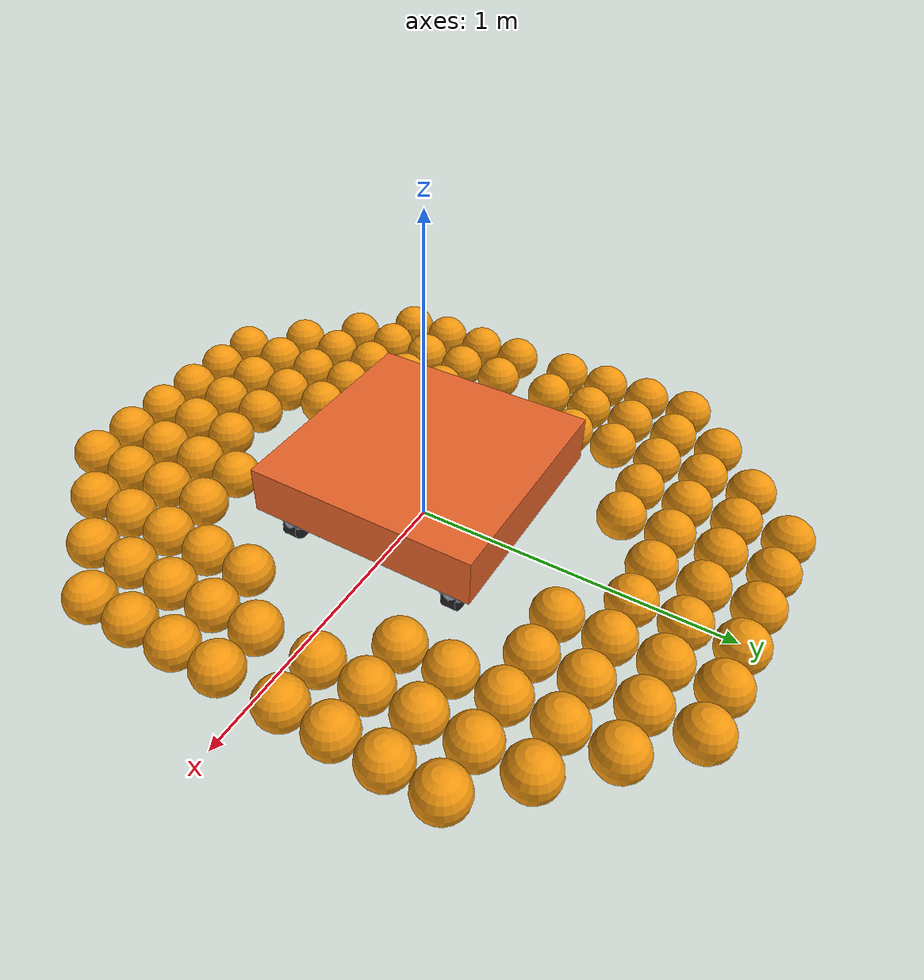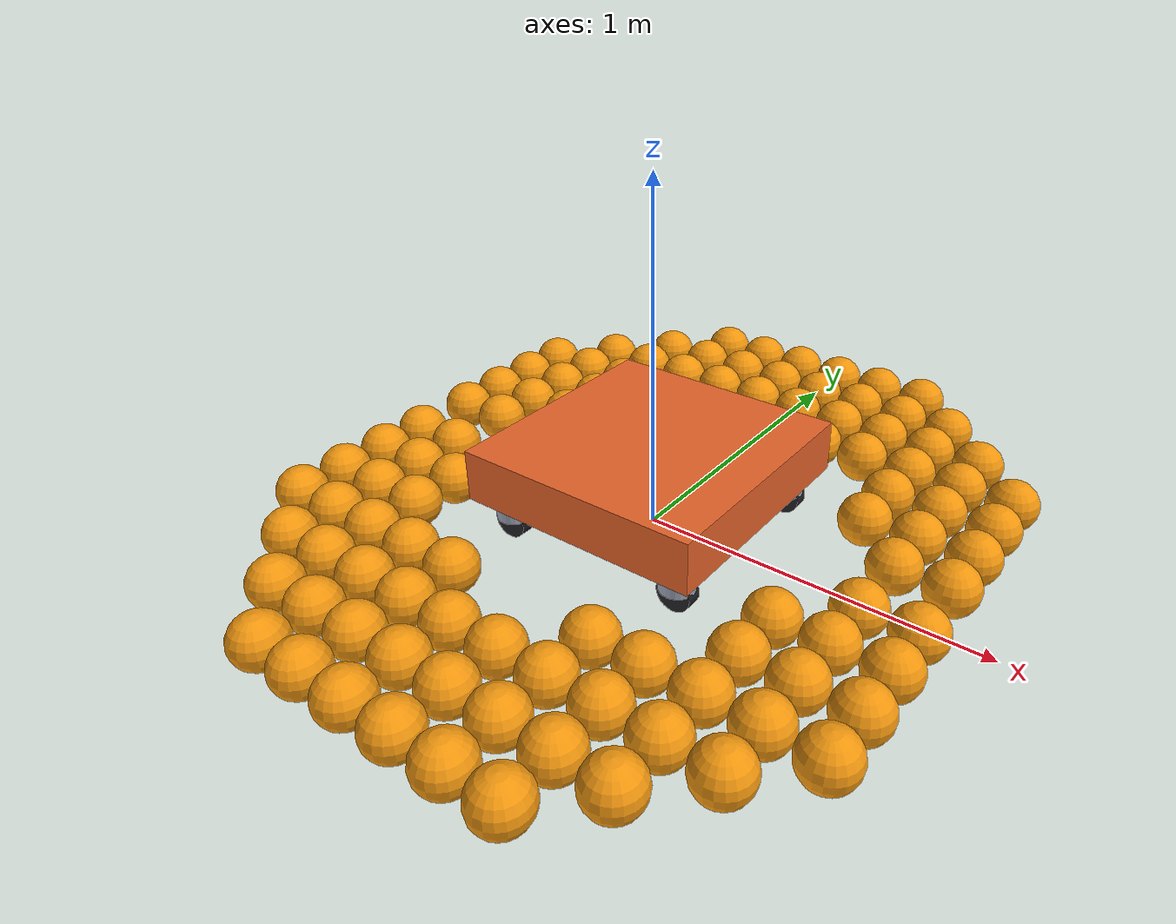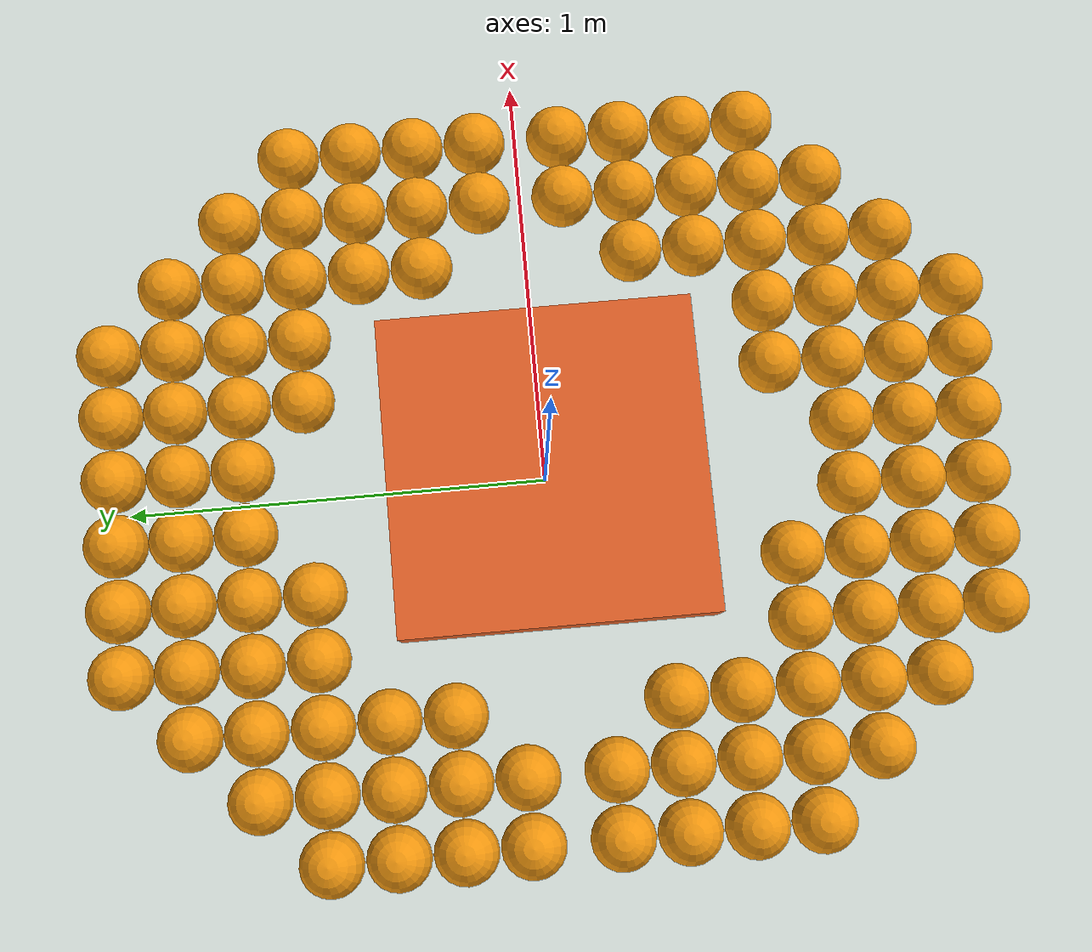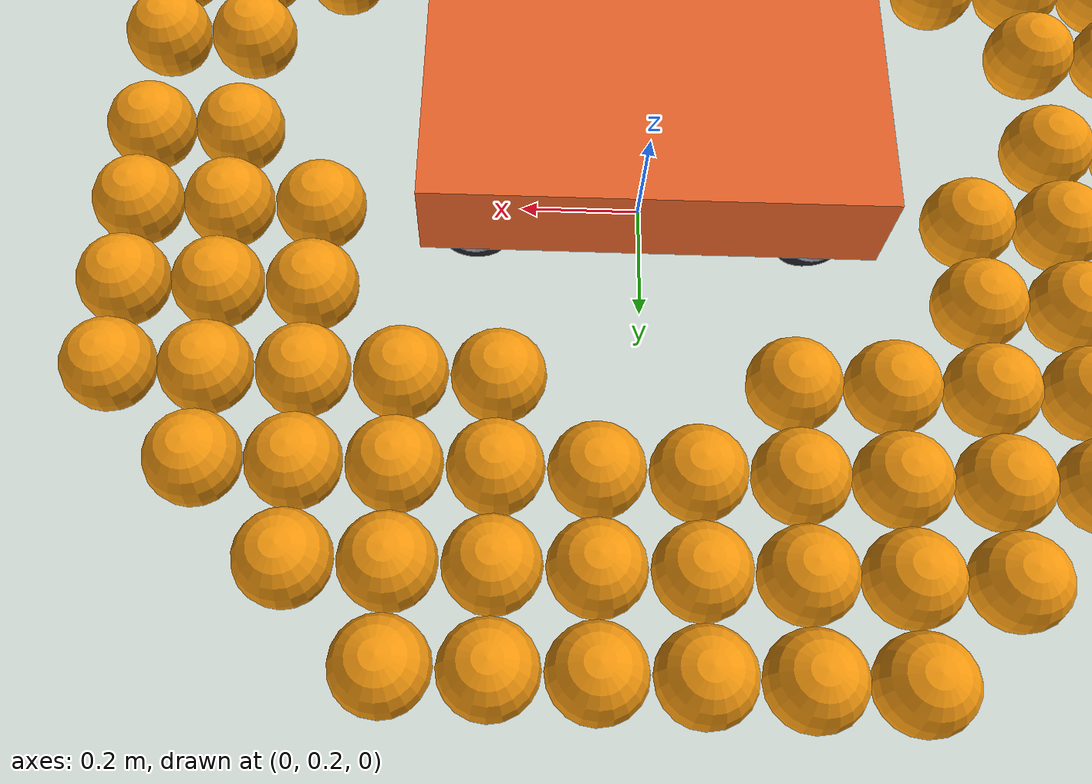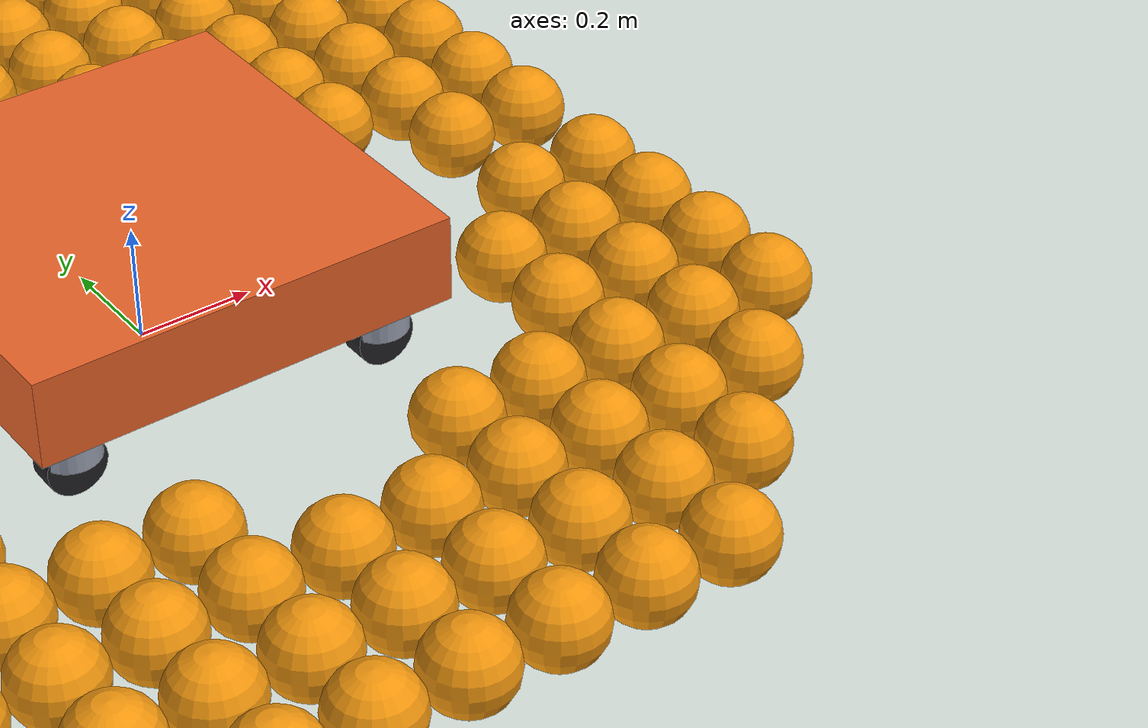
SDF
<sdf version="1.11">
 <world name="mars">
  <physics name="250hz" type="ignored">
   <max_step_size>0.004</max_step_size>
   <real_time_factor>1.0</real_time_factor>
  </physics>
  <plugin filename="gz-sim-physics-system" name="gz::sim::systems::Physics"/>
  <plugin filename="gz-sim-user-commands-system" name="gz::sim::systems::UserCommands"/>
  <plugin filename="gz-sim-scene-broadcaster-system" name="gz::sim::systems::SceneBroadcaster"/>
  <gravity>0 0 -9.8</gravity>
  <light type="directional" name="sun">
   <pose>0 0 10 0 0 0</pose>
   <diffuse>0.8 0.8 0.8 1</diffuse>
   <direction>-0.5 0.1 -0.9</direction>
  </light>
  <model name="ground_plane">
   <static>true</static>
   <link name="link">
    <collision name="collision">
     <geometry><plane><normal>0 0 1</normal></plane></geometry>
     <surface><friction><ode><mu>0.9</mu><mu2>0.9</mu2></ode></friction></surface>
    </collision>
   </link>
  </model>
  <model name="field_collision">
   <static>true</static>
   <link name="link">
    <collision name="guardrail_1">
     <pose>-0.0000 4.1927 0.2611 0.00000 0.00000 0.00000</pose>
     <geometry><box><size>16.6372 0.3580 0.5237</size></box></geometry>
    </collision>
    <collision name="guardrail_2">
     <pose>0.0000 -4.1927 0.2611 0.00000 0.00000 0.00000</pose>
     <geometry><box><size>16.6372 0.3580 0.5237</size></box></geometry>
    </collision>
    <collision name="driver_station_1">
     <pose>-8.4467 3.0798 0.9949 0.00000 0.00000 0.00000</pose>
     <geometry><box><size>0.3810 1.8288 1.9853</size></box></geometry>
    </collision>
    <collision name="driver_station_2">
     <pose>-8.4467 1.2510 0.9949 0.00000 0.00000 0.00000</pose>
     <geometry><box><size>0.3810 1.8288 1.9853</size></box></geometry>
    </collision>
    <collision name="driver_station_3">
     <pose>-8.4467 -1.8288 0.9949 0.00000 0.00000 0.00000</pose>
     <geometry><box><size>0.3810 1.8288 1.9853</size></box></geometry>
    </collision>
    <collision name="driver_station_4">
     <pose>8.4467 1.8288 0.9949 0.00000 0.00000 0.00000</pose>
     <geometry><box><size>0.3810 1.8288 1.9853</size></box></geometry>
    </collision>
    <collision name="driver_station_5">
     <pose>8.4467 -1.2510 0.9949 0.00000 0.00000 0.00000</pose>
     <geometry><box><size>0.3810 1.8288 1.9853</size></box></geometry>
    </collision>
    <collision name="driver_station_6">
     <pose>8.4467 -3.0798 0.9949 0.00000 0.00000 0.00000</pose>
     <geometry><box><size>0.3810 1.8288 1.9853</size></box></geometry>
    </collision>
    <collision name="tower_1">
     <pose>-7.7285 -0.2889 0.9956 0.00000 0.00000 0.00000</pose>
     <geometry><box><size>1.2050 1.2509 1.9911</size></box></geometry>
    </collision>
    <collision name="tower_2">
     <pose>7.7285 0.2889 0.9956 0.00000 0.00000 0.00000</pose>
     <geometry><box><size>1.2050 1.2509 1.9911</size></box></geometry>
    </collision>
    <collision name="outpost_1">
     <pose>-8.7156 -3.4592 0.9955 0.00000 0.00000 0.00000</pose>
     <geometry><box><size>1.0247 1.4319 1.9909</size></box></geometry>
    </collision>
    <collision name="outpost_2">
     <pose>8.7156 3.4592 0.9955 0.00000 0.00000 0.00000</pose>
     <geometry><box><size>1.0247 1.4319 1.9909</size></box></geometry>
    </collision>
    <collision name="hub_1">
     <pose>-3.4933 0.0051 1.5407 0.00000 0.00000 0.00000</pose>
     <geometry><box><size>1.5306 1.4947 3.0814</size></box></geometry>
    </collision>
    <collision name="hub_2">
     <pose>3.4933 -0.0051 1.5407 0.00000 0.00000 0.00000</pose>
     <geometry><box><size>1.5306 1.4947 3.0814</size></box></geometry>
    </collision>
    <collision name="bump_1_1">
     <pose>-3.9155 -1.6345 0.0443 0.00000 -0.28539 0.00000</pose>
     <geometry><box><size>0.5876 2.2333 0.0800</size></box></geometry>
    </collision>
    <collision name="bump_1_2">
     <pose>-3.3743 -1.6345 0.0443 0.00000 0.28539 0.00000</pose>
     <geometry><box><size>0.5876 2.2333 0.0800</size></box></geometry>
    </collision>
    <collision name="bump_2_1">
     <pose>-3.9155 1.6345 0.0443 0.00000 -0.28539 0.00000</pose>
     <geometry><box><size>0.5876 2.2333 0.0800</size></box></geometry>
    </collision>
    <collision name="bump_2_2">
     <pose>-3.3743 1.6345 0.0443 0.00000 0.28539 0.00000</pose>
     <geometry><box><size>0.5876 2.2333 0.0800</size></box></geometry>
    </collision>
    <collision name="bump_3_1">
     <pose>3.3743 -1.6345 0.0443 0.00000 -0.28539 0.00000</pose>
     <geometry><box><size>0.5876 2.2333 0.0800</size></box></geometry>
    </collision>
    <collision name="bump_3_2">
     <pose>3.9155 -1.6345 0.0443 0.00000 0.28539 0.00000</pose>
     <geometry><box><size>0.5876 2.2333 0.0800</size></box></geometry>
    </collision>
    <collision name="bump_4_1">
     <pose>3.3743 1.6345 0.0443 0.00000 -0.28539 0.00000</pose>
     <geometry><box><size>0.5876 2.2333 0.0800</size></box></geometry>
    </collision>
    <collision name="bump_4_2">
     <pose>3.9155 1.6345 0.0443 0.00000 0.28539 0.00000</pose>
     <geometry><box><size>0.5876 2.2333 0.0800</size></box></geometry>
    </collision>
   </link>
  </model>
  <include><uri>model://fuel</uri><name>fuel_001</name><pose>-0.5334 0.2540 0.0765 0 0 0</pose></include>
  <include><uri>model://fuel</uri><name>fuel_002</name><pose>-0.5334 -0.2540 0.0753 0 0 0</pose></include>
  <include><uri>model://fuel</uri><name>fuel_003</name><pose>0.5334 0.2540 0.0765 0 0 0</pose></include>
  <include><uri>model://fuel</uri><name>fuel_004</name><pose>0.5334 -0.2540 0.0753 0 0 0</pose></include>
  <include><uri>model://fuel</uri><name>fuel_005</name><pose>-0.2286 -0.5588 0.0753 0 0 0</pose></include>
  <include><uri>model://fuel</uri><name>fuel_006</name><pose>0.2286 -0.5588 0.0753 0 0 0</pose></include>
  <include><uri>model://fuel</uri><name>fuel_007</name><pose>0.2286 0.5588 0.0765 0 0 0</pose></include>
  <include><uri>model://fuel</uri><name>fuel_008</name><pose>-0.2286 0.5588 0.0765 0 0 0</pose></include>
  <include><uri>model://fuel</uri><name>fuel_009</name><pose>0.5334 0.4064 0.0765 0 0 0</pose></include>
  <include><uri>model://fuel</uri><name>fuel_010</name><pose>-0.5334 0.4064 0.0765 0 0 0</pose></include>
  <include><uri>model://fuel</uri><name>fuel_011</name><pose>-0.5334 -0.4064 0.0753 0 0 0</pose></include>
  <include><uri>model://fuel</uri><name>fuel_012</name><pose>0.5334 -0.4064 0.0753 0 0 0</pose></include>
  <include><uri>model://fuel</uri><name>fuel_013</name><pose>0.3810 -0.5588 0.0753 0 0 0</pose></include>
  <include><uri>model://fuel</uri><name>fuel_014</name><pose>0.3810 0.5588 0.0765 0 0 0</pose></include>
  <include><uri>model://fuel</uri><name>fuel_015</name><pose>-0.3810 -0.5588 0.0753 0 0 0</pose></include>
  <include><uri>model://fuel</uri><name>fuel_016</name><pose>-0.3810 0.5588 0.0765 0 0 0</pose></include>
  <include><uri>model://fuel</uri><name>fuel_017</name><pose>-0.6858 -0.1016 0.0753 0 0 0</pose></include>
  <include><uri>model://fuel</uri><name>fuel_018</name><pose>0.6858 0.1016 0.0765 0 0 0</pose></include>
  <include><uri>model://fuel</uri><name>fuel_019</name><pose>-0.6858 0.1016 0.0765 0 0 0</pose></include>
  <include><uri>model://fuel</uri><name>fuel_020</name><pose>0.6858 -0.1016 0.0753 0 0 0</pose></include>
  <include><uri>model://fuel</uri><name>fuel_021</name><pose>-0.0762 0.7112 0.0765 0 0 0</pose></include>
  <include><uri>model://fuel</uri><name>fuel_022</name><pose>0.0762 -0.7112 0.0753 0 0 0</pose></include>
  <include><uri>model://fuel</uri><name>fuel_023</name><pose>0.0762 0.7112 0.0765 0 0 0</pose></include>
  <include><uri>model://fuel</uri><name>fuel_024</name><pose>-0.0762 -0.7112 0.0753 0 0 0</pose></include>
  <include><uri>model://fuel</uri><name>fuel_025</name><pose>-0.6858 0.2540 0.0765 0 0 0</pose></include>
  <include><uri>model://fuel</uri><name>fuel_026</name><pose>0.6858 -0.2540 0.0753 0 0 0</pose></include>
  <include><uri>model://fuel</uri><name>fuel_027</name><pose>0.6858 0.2540 0.0765 0 0 0</pose></include>
  <include><uri>model://fuel</uri><name>fuel_028</name><pose>-0.6858 -0.2540 0.0753 0 0 0</pose></include>
  <include><uri>model://fuel</uri><name>fuel_029</name><pose>0.2286 0.7112 0.0765 0 0 0</pose></include>
  <include><uri>model://fuel</uri><name>fuel_030</name><pose>0.2286 -0.7112 0.0753 0 0 0</pose></include>
  <include><uri>model://fuel</uri><name>fuel_031</name><pose>-0.2286 -0.7112 0.0753 0 0 0</pose></include>
  <include><uri>model://fuel</uri><name>fuel_032</name><pose>-0.2286 0.7112 0.0765 0 0 0</pose></include>
  <include><uri>model://fuel</uri><name>fuel_033</name><pose>-0.5334 0.5588 0.0765 0 0 0</pose></include>
  <include><uri>model://fuel</uri><name>fuel_034</name><pose>0.5334 -0.5588 0.0753 0 0 0</pose></include>
  <include><uri>model://fuel</uri><name>fuel_035</name><pose>0.5334 0.5588 0.0765 0 0 0</pose></include>
  <include><uri>model://fuel</uri><name>fuel_036</name><pose>-0.5334 -0.5588 0.0753 0 0 0</pose></include>
  <include><uri>model://fuel</uri><name>fuel_037</name><pose>0.6858 0.4064 0.0765 0 0 0</pose></include>
  <include><uri>model://fuel</uri><name>fuel_038</name><pose>-0.6858 0.4064 0.0765 0 0 0</pose></include>
  <include><uri>model://fuel</uri><name>fuel_039</name><pose>0.6858 -0.4064 0.0753 0 0 0</pose></include>
  <include><uri>model://fuel</uri><name>fuel_040</name><pose>-0.6858 -0.4064 0.0753 0 0 0</pose></include>
  <include><uri>model://fuel</uri><name>fuel_041</name><pose>0.3810 0.7112 0.0765 0 0 0</pose></include>
  <include><uri>model://fuel</uri><name>fuel_042</name><pose>-0.3810 -0.7112 0.0753 0 0 0</pose></include>
  <include><uri>model://fuel</uri><name>fuel_043</name><pose>0.3810 -0.7112 0.0753 0 0 0</pose></include>
  <include><uri>model://fuel</uri><name>fuel_044</name><pose>-0.3810 0.7112 0.0765 0 0 0</pose></include>
  <include><uri>model://fuel</uri><name>fuel_045</name><pose>0.8382 -0.1016 0.0753 0 0 0</pose></include>
  <include><uri>model://fuel</uri><name>fuel_046</name><pose>-0.8382 -0.1016 0.0753 0 0 0</pose></include>
  <include><uri>model://fuel</uri><name>fuel_047</name><pose>-0.8382 0.1016 0.0765 0 0 0</pose></include>
  <include><uri>model://fuel</uri><name>fuel_048</name><pose>0.8382 0.1016 0.0765 0 0 0</pose></include>
  <include><uri>model://fuel</uri><name>fuel_049</name><pose>0.0762 0.8636 0.0765 0 0 0</pose></include>
  <include><uri>model://fuel</uri><name>fuel_050</name><pose>-0.0762 -0.8636 0.0753 0 0 0</pose></include>
  <include><uri>model://fuel</uri><name>fuel_051</name><pose>0.0762 -0.8636 0.0753 0 0 0</pose></include>
  <include><uri>model://fuel</uri><name>fuel_052</name><pose>-0.0762 0.8636 0.0765 0 0 0</pose></include>
  <include><uri>model://fuel</uri><name>fuel_053</name><pose>-0.8382 -0.2540 0.0753 0 0 0</pose></include>
  <include><uri>model://fuel</uri><name>fuel_054</name><pose>-0.8382 0.2540 0.0765 0 0 0</pose></include>
  <include><uri>model://fuel</uri><name>fuel_055</name><pose>0.8382 -0.2540 0.0753 0 0 0</pose></include>
  <include><uri>model://fuel</uri><name>fuel_056</name><pose>0.8382 0.2540 0.0765 0 0 0</pose></include>
  <include><uri>model://fuel</uri><name>fuel_057</name><pose>-0.6858 0.5588 0.0765 0 0 0</pose></include>
  <include><uri>model://fuel</uri><name>fuel_058</name><pose>-0.6858 -0.5588 0.0753 0 0 0</pose></include>
  <include><uri>model://fuel</uri><name>fuel_059</name><pose>0.6858 -0.5588 0.0753 0 0 0</pose></include>
  <include><uri>model://fuel</uri><name>fuel_060</name><pose>0.6858 0.5588 0.0765 0 0 0</pose></include>
  <include><uri>model://fuel</uri><name>fuel_061</name><pose>-0.5334 0.7112 0.0765 0 0 0</pose></include>
  <include><uri>model://fuel</uri><name>fuel_062</name><pose>0.5334 -0.7112 0.0753 0 0 0</pose></include>
  <include><uri>model://fuel</uri><name>fuel_063</name><pose>-0.5334 -0.7112 0.0753 0 0 0</pose></include>
  <include><uri>model://fuel</uri><name>fuel_064</name><pose>0.5334 0.7112 0.0765 0 0 0</pose></include>
  <include><uri>model://fuel</uri><name>fuel_065</name><pose>-0.2286 0.8636 0.0765 0 0 0</pose></include>
  <include><uri>model://fuel</uri><name>fuel_066</name><pose>0.2286 0.8636 0.0765 0 0 0</pose></include>
  <include><uri>model://fuel</uri><name>fuel_067</name><pose>-0.2286 -0.8636 0.0753 0 0 0</pose></include>
  <include><uri>model://fuel</uri><name>fuel_068</name><pose>0.2286 -0.8636 0.0753 0 0 0</pose></include>
  <include><uri>model://fuel</uri><name>fuel_069</name><pose>-0.8382 0.4064 0.0765 0 0 0</pose></include>
  <include><uri>model://fuel</uri><name>fuel_070</name><pose>-0.8382 -0.4064 0.0753 0 0 0</pose></include>
  <include><uri>model://fuel</uri><name>fuel_071</name><pose>0.8382 0.4064 0.0765 0 0 0</pose></include>
  <include><uri>model://fuel</uri><name>fuel_072</name><pose>0.8382 -0.4064 0.0753 0 0 0</pose></include>
  <include><uri>model://fuel</uri><name>fuel_073</name><pose>0.3810 -0.8636 0.0753 0 0 0</pose></include>
  <include><uri>model://fuel</uri><name>fuel_074</name><pose>0.3810 0.8636 0.0765 0 0 0</pose></include>
  <include><uri>model://fuel</uri><name>fuel_075</name><pose>-0.3810 -0.8636 0.0753 0 0 0</pose></include>
  <include><uri>model://fuel</uri><name>fuel_076</name><pose>-0.3810 0.8636 0.0765 0 0 0</pose></include>
  <include><uri>model://fuel</uri><name>fuel_077</name><pose>-0.6858 0.7112 0.0765 0 0 0</pose></include>
  <include><uri>model://fuel</uri><name>fuel_078</name><pose>0.6858 0.7112 0.0765 0 0 0</pose></include>
  <include><uri>model://fuel</uri><name>fuel_079</name><pose>0.6858 -0.7112 0.0753 0 0 0</pose></include>
  <include><uri>model://fuel</uri><name>fuel_080</name><pose>-0.6858 -0.7112 0.0753 0 0 0</pose></include>
  <include><uri>model://fuel</uri><name>fuel_081</name><pose>-0.8382 -0.5588 0.0753 0 0 0</pose></include>
  <include><uri>model://fuel</uri><name>fuel_082</name><pose>-0.8382 0.5588 0.0765 0 0 0</pose></include>
  <include><uri>model://fuel</uri><name>fuel_083</name><pose>0.8382 0.5588 0.0765 0 0 0</pose></include>
  <include><uri>model://fuel</uri><name>fuel_084</name><pose>0.8382 -0.5588 0.0753 0 0 0</pose></include>
  <include><uri>model://fuel</uri><name>fuel_085</name><pose>0.5334 -0.8636 0.0753 0 0 0</pose></include>
  <include><uri>model://fuel</uri><name>fuel_086</name><pose>0.5334 0.8636 0.0765 0 0 0</pose></include>
  <include><uri>model://fuel</uri><name>fuel_087</name><pose>-0.5334 -0.8636 0.0753 0 0 0</pose></include>
  <include><uri>model://fuel</uri><name>fuel_088</name><pose>-0.5334 0.8636 0.0765 0 0 0</pose></include>
  <include><uri>model://fuel</uri><name>fuel_089</name><pose>0.0762 -1.0160 0.0753 0 0 0</pose></include>
  <include><uri>model://fuel</uri><name>fuel_090</name><pose>0.0762 1.0160 0.0765 0 0 0</pose></include>
  <include><uri>model://fuel</uri><name>fuel_091</name><pose>-0.0762 -1.0160 0.0753 0 0 0</pose></include>
  <include><uri>model://fuel</uri><name>fuel_092</name><pose>-0.0762 1.0160 0.0765 0 0 0</pose></include>
  <include><uri>model://fuel</uri><name>fuel_093</name><pose>-0.2286 1.0160 0.0765 0 0 0</pose></include>
  <include><uri>model://fuel</uri><name>fuel_094</name><pose>0.2286 1.0160 0.0765 0 0 0</pose></include>
  <include><uri>model://fuel</uri><name>fuel_095</name><pose>-0.2286 -1.0160 0.0753 0 0 0</pose></include>
  <include><uri>model://fuel</uri><name>fuel_096</name><pose>0.2286 -1.0160 0.0753 0 0 0</pose></include>
  <include><uri>model://fuel</uri><name>fuel_097</name><pose>0.3810 -1.0160 0.0753 0 0 0</pose></include>
  <include><uri>model://fuel</uri><name>fuel_098</name><pose>0.3810 1.0160 0.0765 0 0 0</pose></include>
  <include><uri>model://fuel</uri><name>fuel_099</name><pose>-0.3810 1.0160 0.0765 0 0 0</pose></include>
  <include><uri>model://fuel</uri><name>fuel_100</name><pose>-0.3810 -1.0160 0.0753 0 0 0</pose></include>
  <model name="robot">
   <link name="chassis">
    <pose>0 0 0.2 0 0 0</pose>
    <inertial>
     <mass>45.0</mass>
     <inertia><ixx>2.0284</ixx><iyy>2.0284</iyy><izz>3.8880</izz><ixy>0</ixy><ixz>0</ixz><iyz>0</iyz></inertia>
    </inertial>
    <collision name="collision"><geometry><box><size>0.72 0.72 0.15</size></box></geometry></collision>
    <visual name="visual">
     <geometry><box><size>0.72 0.72 0.15</size></box></geometry>
     <material>
      <ambient>0.35 0.15 0.06 1</ambient>
      <diffuse>0.91 0.39 0.16 1</diffuse>
      <specular>0.3 0.3 0.3 1</specular>
     </material>
    </visual>
   </link>
   <link name="fl_steer">
    <pose>0.2757 0.2757 0.12 0 0 0</pose>
    <inertial>
     <mass>1.2</mass>
     <inertia>
      <ixx>0.015346</ixx>
      <iyy>0.015346</iyy>
      <izz>0.030091</izz>
      <ixy>0</ixy>
      <ixz>0</ixz>
      <iyz>0</iyz>
     </inertia>
    </inertial>
    <visual name="visual">
     <geometry><cylinder><radius>0.05</radius><length>0.12</length></cylinder></geometry>
     <material><ambient>0.25 0.26 0.3 1</ambient><diffuse>0.62 0.65 0.72 1</diffuse></material>
    </visual>
   </link>
   <link name="fl_wheel">
    <pose>0.2757 0.2757 0.0508 -1.5707963 0 0</pose>
    <inertial>
     <mass>0.8</mass>
     <inertia>
      <ixx>0.001122</ixx>
      <iyy>0.001122</iyy>
      <izz>0.002200</izz>
      <ixy>0</ixy>
      <ixz>0</ixz>
      <iyz>0</iyz>
     </inertia>
    </inertial>
    <collision name="collision">
     <geometry><cylinder><radius>0.0508</radius><length>0.045</length></cylinder></geometry>
     <surface><friction><ode><mu>1.1</mu><mu2>1.1</mu2></ode></friction></surface>
    </collision>
    <visual name="visual">
     <geometry><cylinder><radius>0.0508</radius><length>0.045</length></cylinder></geometry>
     <material><ambient>0.05 0.05 0.06 1</ambient><diffuse>0.13 0.13 0.15 1</diffuse></material>
    </visual>
   </link>
   <joint name="fl_steer_joint" type="revolute">
    <parent>chassis</parent>
    <child>fl_steer</child>
    <axis>
     <xyz>0 0 1</xyz>
     <dynamics><damping>0.05</damping></dynamics>
     <limit><lower>-1e16</lower><upper>1e16</upper></limit>
    </axis>
   </joint>
   <joint name="fl_drive_joint" type="revolute">
    <parent>fl_steer</parent>
    <child>fl_wheel</child>
    <axis>
     <xyz>0 0 1</xyz>
     <dynamics><damping>0.004</damping></dynamics>
     <limit><lower>-1e16</lower><upper>1e16</upper></limit>
    </axis>
   </joint>
   <link name="fr_steer">
    <pose>0.2757 -0.2757 0.12 0 0 0</pose>
    <inertial>
     <mass>1.2</mass>
     <inertia>
      <ixx>0.015346</ixx>
      <iyy>0.015346</iyy>
      <izz>0.030091</izz>
      <ixy>0</ixy>
      <ixz>0</ixz>
      <iyz>0</iyz>
     </inertia>
    </inertial>
    <visual name="visual">
     <geometry><cylinder><radius>0.05</radius><length>0.12</length></cylinder></geometry>
     <material><ambient>0.25 0.26 0.3 1</ambient><diffuse>0.62 0.65 0.72 1</diffuse></material>
    </visual>
   </link>
   <link name="fr_wheel">
    <pose>0.2757 -0.2757 0.0508 -1.5707963 0 0</pose>
    <inertial>
     <mass>0.8</mass>
     <inertia>
      <ixx>0.001122</ixx>
      <iyy>0.001122</iyy>
      <izz>0.002200</izz>
      <ixy>0</ixy>
      <ixz>0</ixz>
      <iyz>0</iyz>
     </inertia>
    </inertial>
    <collision name="collision">
     <geometry><cylinder><radius>0.0508</radius><length>0.045</length></cylinder></geometry>
     <surface><friction><ode><mu>1.1</mu><mu2>1.1</mu2></ode></friction></surface>
    </collision>
    <visual name="visual">
     <geometry><cylinder><radius>0.0508</radius><length>0.045</length></cylinder></geometry>
     <material><ambient>0.05 0.05 0.06 1</ambient><diffuse>0.13 0.13 0.15 1</diffuse></material>
    </visual>
   </link>
   <joint name="fr_steer_joint" type="revolute">
    <parent>chassis</parent>
    <child>fr_steer</child>
    <axis>
     <xyz>0 0 1</xyz>
     <dynamics><damping>0.05</damping></dynamics>
     <limit><lower>-1e16</lower><upper>1e16</upper></limit>
    </axis>
   </joint>
   <joint name="fr_drive_joint" type="revolute">
    <parent>fr_steer</parent>
    <child>fr_wheel</child>
    <axis>
     <xyz>0 0 1</xyz>
     <dynamics><damping>0.004</damping></dynamics>
     <limit><lower>-1e16</lower><upper>1e16</upper></limit>
    </axis>
   </joint>
   <link name="bl_steer">
    <pose>-0.2757 0.2757 0.12 0 0 0</pose>
    <inertial>
     <mass>1.2</mass>
     <inertia>
      <ixx>0.015346</ixx>
      <iyy>0.015346</iyy>
      <izz>0.030091</izz>
      <ixy>0</ixy>
      <ixz>0</ixz>
      <iyz>0</iyz>
     </inertia>
    </inertial>
    <visual name="visual">
     <geometry><cylinder><radius>0.05</radius><length>0.12</length></cylinder></geometry>
     <material><ambient>0.25 0.26 0.3 1</ambient><diffuse>0.62 0.65 0.72 1</diffuse></material>
    </visual>
   </link>
   <link name="bl_wheel">
    <pose>-0.2757 0.2757 0.0508 -1.5707963 0 0</pose>
    <inertial>
     <mass>0.8</mass>
     <inertia>
      <ixx>0.001122</ixx>
      <iyy>0.001122</iyy>
      <izz>0.002200</izz>
      <ixy>0</ixy>
      <ixz>0</ixz>
      <iyz>0</iyz>
     </inertia>
    </inertial>
    <collision name="collision">
     <geometry><cylinder><radius>0.0508</radius><length>0.045</length></cylinder></geometry>
     <surface><friction><ode><mu>1.1</mu><mu2>1.1</mu2></ode></friction></surface>
    </collision>
    <visual name="visual">
     <geometry><cylinder><radius>0.0508</radius><length>0.045</length></cylinder></geometry>
     <material><ambient>0.05 0.05 0.06 1</ambient><diffuse>0.13 0.13 0.15 1</diffuse></material>
    </visual>
   </link>
   <joint name="bl_steer_joint" type="revolute">
    <parent>chassis</parent>
    <child>bl_steer</child>
    <axis>
     <xyz>0 0 1</xyz>
     <dynamics><damping>0.05</damping></dynamics>
     <limit><lower>-1e16</lower><upper>1e16</upper></limit>
    </axis>
   </joint>
   <joint name="bl_drive_joint" type="revolute">
    <parent>bl_steer</parent>
    <child>bl_wheel</child>
    <axis>
     <xyz>0 0 1</xyz>
     <dynamics><damping>0.004</damping></dynamics>
     <limit><lower>-1e16</lower><upper>1e16</upper></limit>
    </axis>
   </joint>
   <link name="br_steer">
    <pose>-0.2757 -0.2757 0.12 0 0 0</pose>
    <inertial>
     <mass>1.2</mass>
     <inertia>
      <ixx>0.015346</ixx>
      <iyy>0.015346</iyy>
      <izz>0.030091</izz>
      <ixy>0</ixy>
      <ixz>0</ixz>
      <iyz>0</iyz>
     </inertia>
    </inertial>
    <visual name="visual">
     <geometry><cylinder><radius>0.05</radius><length>0.12</length></cylinder></geometry>
     <material><ambient>0.25 0.26 0.3 1</ambient><diffuse>0.62 0.65 0.72 1</diffuse></material>
    </visual>
   </link>
   <link name="br_wheel">
    <pose>-0.2757 -0.2757 0.0508 -1.5707963 0 0</pose>
    <inertial>
     <mass>0.8</mass>
     <inertia>
      <ixx>0.001122</ixx>
      <iyy>0.001122</iyy>
      <izz>0.002200</izz>
      <ixy>0</ixy>
      <ixz>0</ixz>
      <iyz>0</iyz>
     </inertia>
    </inertial>
    <collision name="collision">
     <geometry><cylinder><radius>0.0508</radius><length>0.045</length></cylinder></geometry>
     <surface><friction><ode><mu>1.1</mu><mu2>1.1</mu2></ode></friction></surface>
    </collision>
    <visual name="visual">
     <geometry><cylinder><radius>0.0508</radius><length>0.045</length></cylinder></geometry>
     <material><ambient>0.05 0.05 0.06 1</ambient><diffuse>0.13 0.13 0.15 1</diffuse></material>
    </visual>
   </link>
   <joint name="br_steer_joint" type="revolute">
    <parent>chassis</parent>
    <child>br_steer</child>
    <axis>
     <xyz>0 0 1</xyz>
     <dynamics><damping>0.05</damping></dynamics>
     <limit><lower>-1e16</lower><upper>1e16</upper></limit>
    </axis>
   </joint>
   <joint name="br_drive_joint" type="revolute">
    <parent>br_steer</parent>
    <child>br_wheel</child>
    <axis>
     <xyz>0 0 1</xyz>
     <dynamics><damping>0.004</damping></dynamics>
     <limit><lower>-1e16</lower><upper>1e16</upper></limit>
    </axis>
   </joint>
   <plugin filename="MarsLink" name="mars::MarsLink">
    <actuator joint="fl_drive_joint" motor="kraken_x60" gearRatio="5.2734375" currentLimit="58" neutralMode="brake"/>
    <actuator joint="fl_steer_joint" motor="kraken_x60" gearRatio="26.09090909090909" control="position" currentLimit="60" kp="0.9" kd="0.01"/>
    <actuator joint="fr_drive_joint" motor="kraken_x60" gearRatio="5.2734375" currentLimit="58" neutralMode="brake"/>
    <actuator joint="fr_steer_joint" motor="kraken_x60" gearRatio="26.09090909090909" control="position" currentLimit="60" kp="0.9" kd="0.01"/>
    <actuator joint="bl_drive_joint" motor="kraken_x60" gearRatio="5.2734375" currentLimit="58" neutralMode="brake"/>
    <actuator joint="bl_steer_joint" motor="kraken_x60" gearRatio="26.09090909090909" control="position" currentLimit="60" kp="0.9" kd="0.01"/>
    <actuator joint="br_drive_joint" motor="kraken_x60" gearRatio="5.2734375" currentLimit="58" neutralMode="brake"/>
    <actuator joint="br_steer_joint" motor="kraken_x60" gearRatio="26.09090909090909" control="position" currentLimit="60" kp="0.9" kd="0.01"/>
   </plugin>
  </model>
 </world>
</sdf>

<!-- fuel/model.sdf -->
<sdf version="1.11">
  <model name="fuel">
    <link name="link">

      <inertial>
        <mass>0.215</mass>
        <inertia>
          <ixx>4.8375e-4</ixx><ixy>0</ixy><ixz>0</ixz>
          <iyy>4.8375e-4</iyy><iyz>0</iyz>
          <izz>4.8375e-4</izz>
        </inertia>
      </inertial>

      <collision name="collision">
        <geometry><sphere><radius>0.075</radius></sphere></geometry>
        <surface>
          <friction>
            <ode>
              <mu>0.85</mu>
              <mu2>0.85</mu2>
            </ode>
          </friction>
        </surface>
      </collision>

      <visual name="visual">
        <geometry><sphere><radius>0.075</radius></sphere></geometry>
        <material>
          <ambient>0.38 0.24 0.02 1</ambient>
          <diffuse>0.956 0.597 0.056 1</diffuse>
          <specular>0.05 0.05 0.05 1</specular>
        </material>
      </visual>

    </link>
  </model>
</sdf>
